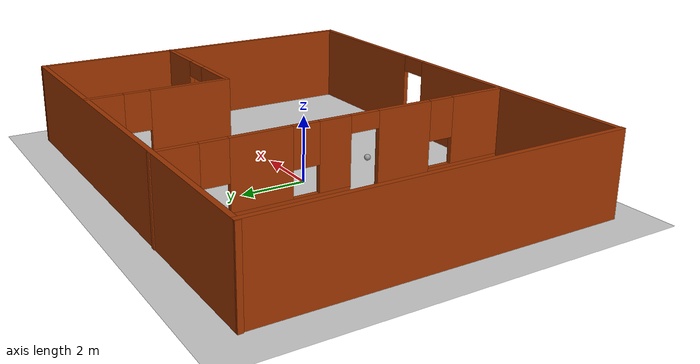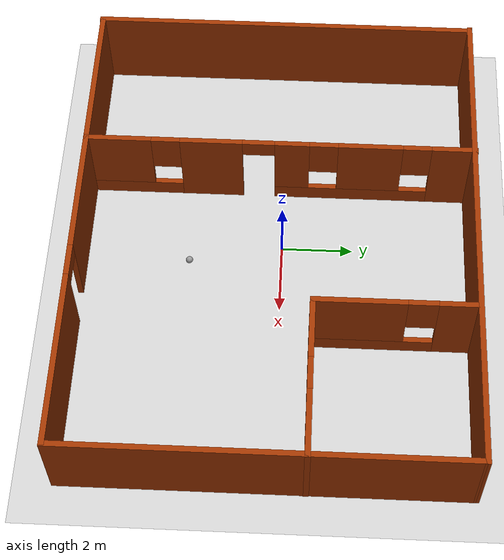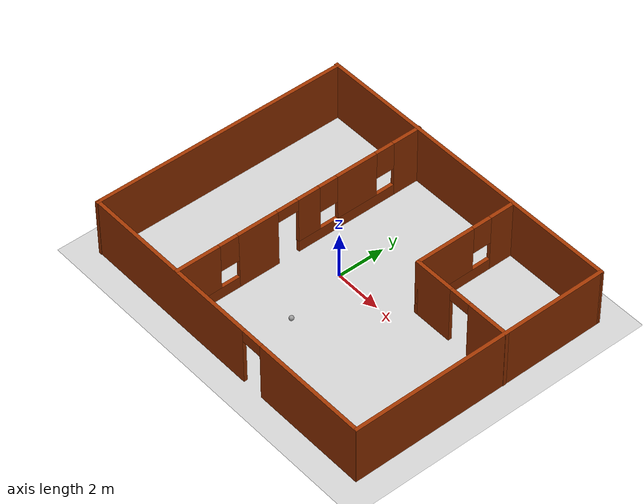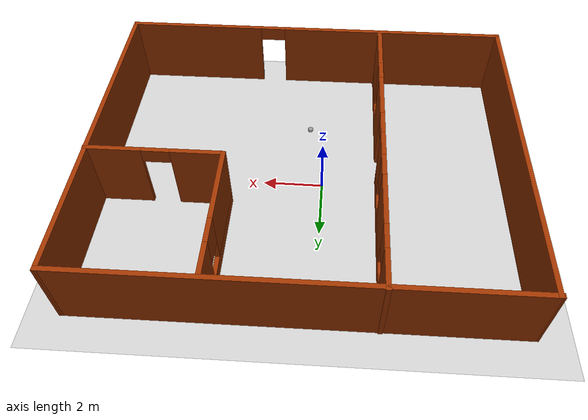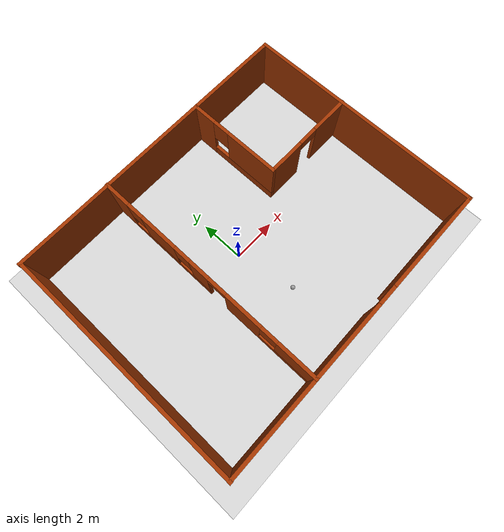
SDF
<sdf version="1.6">
 <world name="default">
  <light name="sun" type="directional">
   <pose>0 0 10 0 -0 0</pose>
   <diffuse>0.8 0.8 0.8 1</diffuse>
   <specular>0.1 0.1 0.1 1</specular>
   <attenuation>
    <range>1000</range>
    <constant>0.9</constant>
    <linear>0.01</linear>
    <quadratic>0.001</quadratic>
   </attenuation>
   <direction>-0.5 0.5 -1</direction>
  </light>
  <model name="ground_plane">
   <static>1</static>
   <link name="link">
    <collision name="collision">
     <geometry><plane><normal>0 0 1</normal><size>100 100</size></plane></geometry>
     <surface><friction><ode><mu>100</mu><mu2>50</mu2></ode></friction></surface>
    </collision>
    <visual name="visual">
     <cast_shadows>0</cast_shadows>
     <geometry><plane><normal>0 0 1</normal><size>100 100</size></plane></geometry>
     <material>
      <script><uri>file://media/materials/scripts/gazebo.material</uri><name>Gazebo/Grey</name></script>
     </material>
    </visual>
   </link>
  </model>
  <gravity>0 0 -9.8</gravity>
  <magnetic_field>6e-06 2.3e-05 -4.2e-05</magnetic_field>
  <atmosphere type="adiabatic"/>
  <physics name="default_physics" default="0" type="ode">
   <max_step_size>0.001</max_step_size>
   <real_time_factor>1</real_time_factor>
   <real_time_update_rate>1000</real_time_update_rate>
  </physics>
  <scene><ambient>0.4 0.4 0.4 1</ambient><background>0.7 0.7 0.7 1</background><shadows>1</shadows></scene>
  <spherical_coordinates>
   <surface_model>EARTH_WGS84</surface_model>
   <latitude_deg>0</latitude_deg>
   <longitude_deg>0</longitude_deg>
   <elevation>0</elevation>
   <heading_deg>0</heading_deg>
  </spherical_coordinates>
  <model name="ingrid_0">
   <pose>0.54796 -0.145633 0 0 -0 0</pose>
   <link name="Wall_0">
    <collision name="Wall_0_Collision">
     <geometry><box><size>11 0.15 2.5</size></box></geometry>
     <pose>0 0 1.25 0 -0 0</pose>
    </collision>
    <visual name="Wall_0_Visual">
     <pose>0 0 1.25 0 -0 0</pose>
     <geometry><box><size>11 0.15 2.5</size></box></geometry>
     <material>
      <script><uri>file://media/materials/scripts/gazebo.material</uri><name>Gazebo/Grey</name></script>
      <ambient>0.615686 0.203922 0 1</ambient>
     </material>
    </visual>
    <pose>-6.82034 -0.016189 0 0 -0 1.5708</pose>
   </link>
   <link name="Wall_1">
    <collision name="Wall_1_Collision">
     <geometry><box><size>13.8484 0.15 2.5</size></box></geometry>
     <pose>0 0 1.25 0 -0 0</pose>
    </collision>
    <visual name="Wall_1_Visual">
     <pose>0 0 1.25 0 -0 0</pose>
     <geometry><box><size>13.8484 0.15 2.5</size></box></geometry>
     <material>
      <script><uri>file://media/materials/scripts/gazebo.material</uri><name>Gazebo/Grey</name></script>
      <ambient>0.615686 0.203922 0 1</ambient>
     </material>
    </visual>
    <pose>-0.006322 5.41718 0 0 -0 0.001222</pose>
   </link>
   <link name="Wall_2">
    <collision name="Wall_2_Collision">
     <geometry><box><size>11 0.15 2.5</size></box></geometry>
     <pose>0 0 1.25 0 -0 0</pose>
    </collision>
    <visual name="Wall_2_Visual">
     <pose>0 0 1.25 0 -0 0</pose>
     <geometry><box><size>11 0.15 2.5</size></box></geometry>
     <material>
      <script><uri>file://media/materials/scripts/gazebo.material</uri><name>Gazebo/Grey</name></script>
      <ambient>0.615686 0.203922 0 1</ambient>
     </material>
    </visual>
    <pose>6.84287 0.00055 0 0 0 -1.5708</pose>
   </link>
   <link name="Wall_3">
    <pose>0.016272 -5.42445 0 0 -0 3.14159</pose>
    <visual name="Wall_3_Visual_0">
     <pose>-4.44831 0 1.25 0 -0 0</pose>
     <geometry><box><size>4.85337 0.15 2.5</size></box></geometry>
     <material>
      <script><uri>file://media/materials/scripts/gazebo.material</uri><name>Gazebo/Grey</name></script>
      <ambient>0.615686 0.203922 0 1</ambient>
     </material>
    </visual>
    <collision name="Wall_3_Collision_0">
     <geometry><box><size>4.85337 0.15 2.5</size></box></geometry>
     <pose>-4.44831 0 1.25 0 -0 0</pose>
    </collision>
    <visual name="Wall_3_Visual_1">
     <pose>2.87669 0 1.25 0 -0 0</pose>
     <geometry><box><size>7.99663 0.15 2.5</size></box></geometry>
     <material>
      <script><uri>file://media/materials/scripts/gazebo.material</uri><name>Gazebo/Grey</name></script>
      <ambient>0.615686 0.203922 0 1</ambient>
     </material>
    </visual>
    <collision name="Wall_3_Collision_1">
     <geometry><box><size>7.99663 0.15 2.5</size></box></geometry>
     <pose>2.87669 0 1.25 0 -0 0</pose>
    </collision>
    <visual name="Wall_3_Visual_2">
     <pose>-1.57163 0 2.25 0 -0 0</pose>
     <geometry><box><size>0.9 0.15 0.5</size></box></geometry>
     <material>
      <script><uri>file://media/materials/scripts/gazebo.material</uri><name>Gazebo/Grey</name></script>
      <ambient>0.615686 0.203922 0 1</ambient>
     </material>
    </visual>
    <collision name="Wall_3_Collision_2">
     <geometry><box><size>0.9 0.15 0.5</size></box></geometry>
     <pose>-1.57163 0 2.25 0 -0 0</pose>
    </collision>
   </link>
   <link name="Wall_5">
    <pose>-2.45001 0.016189 0 0 0 -1.5708</pose>
    <visual name="Wall_5_Visual_0">
     <pose>-4.85711 0 1.25 0 -0 0</pose>
     <geometry><box><size>1.28578 0.15 2.5</size></box></geometry>
     <material>
      <script><uri>file://media/materials/scripts/gazebo.material</uri><name>Gazebo/Grey</name></script>
      <ambient>0.615686 0.203922 0 1</ambient>
     </material>
    </visual>
    <collision name="Wall_5_Collision_0">
     <geometry><box><size>1.28578 0.15 2.5</size></box></geometry>
     <pose>-4.85711 0 1.25 0 -0 0</pose>
    </collision>
    <visual name="Wall_5_Visual_1">
     <pose>1.94492 0 1.25 0 -0 0</pose>
     <geometry><box><size>1.75323 0.15 2.5</size></box></geometry>
     <material>
      <script><uri>file://media/materials/scripts/gazebo.material</uri><name>Gazebo/Grey</name></script>
      <ambient>0.615686 0.203922 0 1</ambient>
     </material>
    </visual>
    <collision name="Wall_5_Collision_1">
     <geometry><box><size>1.75323 0.15 2.5</size></box></geometry>
     <pose>1.94492 0 1.25 0 -0 0</pose>
    </collision>
    <visual name="Wall_5_Visual_2">
     <pose>-2.02296 0 0.25 0 -0 0</pose>
     <geometry><box><size>4.38252 0.15 0.5</size></box></geometry>
     <material>
      <script><uri>file://media/materials/scripts/gazebo.material</uri><name>Gazebo/Grey</name></script>
      <ambient>0.615686 0.203922 0 1</ambient>
     </material>
    </visual>
    <collision name="Wall_5_Collision_2">
     <geometry><box><size>4.38252 0.15 0.5</size></box></geometry>
     <pose>-2.02296 0 0.25 0 -0 0</pose>
    </collision>
    <visual name="Wall_5_Visual_3">
     <pose>4.16076 0 0.25 0 -0 0</pose>
     <geometry><box><size>2.67847 0.15 0.5</size></box></geometry>
     <material>
      <script><uri>file://media/materials/scripts/gazebo.material</uri><name>Gazebo/Grey</name></script>
      <ambient>0.615686 0.203922 0 1</ambient>
     </material>
    </visual>
    <collision name="Wall_5_Collision_3">
     <geometry><box><size>2.67847 0.15 0.5</size></box></geometry>
     <pose>4.16076 0 0.25 0 -0 0</pose>
    </collision>
    <visual name="Wall_5_Visual_4">
     <pose>-2.51261 0 1.5 0 -0 0</pose>
     <geometry><box><size>1.80323 0.15 2</size></box></geometry>
     <material>
      <script><uri>file://media/materials/scripts/gazebo.material</uri><name>Gazebo/Grey</name></script>
      <ambient>0.615686 0.203922 0 1</ambient>
     </material>
    </visual>
    <collision name="Wall_5_Collision_4">
     <geometry><box><size>1.80323 0.15 2</size></box></geometry>
     <pose>-2.51261 0 1.5 0 -0 0</pose>
    </collision>
    <visual name="Wall_5_Visual_5">
     <pose>-0.321346 0 1.5 0 -0 0</pose>
     <geometry><box><size>0.979296 0.15 2</size></box></geometry>
     <material>
      <script><uri>file://media/materials/scripts/gazebo.material</uri><name>Gazebo/Grey</name></script>
      <ambient>0.615686 0.203922 0 1</ambient>
     </material>
    </visual>
    <collision name="Wall_5_Collision_5">
     <geometry><box><size>0.979296 0.15 2</size></box></geometry>
     <pose>-0.321346 0 1.5 0 -0 0</pose>
    </collision>
    <visual name="Wall_5_Visual_6">
     <pose>-0.321346 0 1.5 0 -0 0</pose>
     <geometry><box><size>0.979296 0.15 2</size></box></geometry>
     <material>
      <script><uri>file://media/materials/scripts/gazebo.material</uri><name>Gazebo/Grey</name></script>
      <ambient>0.615686 0.203922 0 1</ambient>
     </material>
    </visual>
    <collision name="Wall_5_Collision_6">
     <geometry><box><size>0.979296 0.15 2</size></box></geometry>
     <pose>-0.321346 0 1.5 0 -0 0</pose>
    </collision>
    <visual name="Wall_5_Visual_7">
     <pose>4.56076 0 1.5 0 -0 0</pose>
     <geometry><box><size>1.87847 0.15 2</size></box></geometry>
     <material>
      <script><uri>file://media/materials/scripts/gazebo.material</uri><name>Gazebo/Grey</name></script>
      <ambient>0.615686 0.203922 0 1</ambient>
     </material>
    </visual>
    <collision name="Wall_5_Collision_7">
     <geometry><box><size>1.87847 0.15 2</size></box></geometry>
     <pose>4.56076 0 1.5 0 -0 0</pose>
    </collision>
    <visual name="Wall_5_Visual_8">
     <pose>-3.81422 0 1.9 0 -0 0</pose>
     <geometry><box><size>0.8 0.15 1.2</size></box></geometry>
     <material>
      <script><uri>file://media/materials/scripts/gazebo.material</uri><name>Gazebo/Grey</name></script>
      <ambient>0.615686 0.203922 0 1</ambient>
     </material>
    </visual>
    <collision name="Wall_5_Collision_8">
     <geometry><box><size>0.8 0.15 1.2</size></box></geometry>
     <pose>-3.81422 0 1.9 0 -0 0</pose>
    </collision>
    <visual name="Wall_5_Visual_9">
     <pose>3.22153 0 1.9 0 -0 0</pose>
     <geometry><box><size>0.8 0.15 1.2</size></box></geometry>
     <material>
      <script><uri>file://media/materials/scripts/gazebo.material</uri><name>Gazebo/Grey</name></script>
      <ambient>0.615686 0.203922 0 1</ambient>
     </material>
    </visual>
    <collision name="Wall_5_Collision_9">
     <geometry><box><size>0.8 0.15 1.2</size></box></geometry>
     <pose>3.22153 0 1.9 0 -0 0</pose>
    </collision>
    <visual name="Wall_5_Visual_10">
     <pose>-1.21099 0 1.9 0 -0 0</pose>
     <geometry><box><size>0.8 0.15 1.2</size></box></geometry>
     <material>
      <script><uri>file://media/materials/scripts/gazebo.material</uri><name>Gazebo/Grey</name></script>
      <ambient>0.615686 0.203922 0 1</ambient>
     </material>
    </visual>
    <collision name="Wall_5_Collision_10">
     <geometry><box><size>0.8 0.15 1.2</size></box></geometry>
     <pose>-1.21099 0 1.9 0 -0 0</pose>
    </collision>
    <visual name="Wall_5_Visual_11">
     <pose>0.618302 0 2.25 0 -0 0</pose>
     <geometry><box><size>0.9 0.15 0.5</size></box></geometry>
     <material>
      <script><uri>file://media/materials/scripts/gazebo.material</uri><name>Gazebo/Grey</name></script>
      <ambient>0.615686 0.203922 0 1</ambient>
     </material>
    </visual>
    <collision name="Wall_5_Collision_11">
     <geometry><box><size>0.9 0.15 0.5</size></box></geometry>
     <pose>0.618302 0 2.25 0 -0 0</pose>
    </collision>
    <visual name="Wall_5_Visual_12">
     <pose>0.618302 0 2.25 0 -0 0</pose>
     <geometry><box><size>0.9 0.15 0.5</size></box></geometry>
     <material>
      <script><uri>file://media/materials/scripts/gazebo.material</uri><name>Gazebo/Grey</name></script>
      <ambient>0.615686 0.203922 0 1</ambient>
     </material>
    </visual>
    <collision name="Wall_5_Collision_12">
     <geometry><box><size>0.9 0.15 0.5</size></box></geometry>
     <pose>0.618302 0 2.25 0 -0 0</pose>
    </collision>
   </link>
   <link name="Wall_7">
    <pose>2.50561 3.2356 0 0 0 -1.5708</pose>
    <visual name="Wall_7_Visual_0">
     <pose>-1.67517 0 1.25 0 -0 0</pose>
     <geometry><box><size>1.14965 0.15 2.5</size></box></geometry>
     <material>
      <script><uri>file://media/materials/scripts/gazebo.material</uri><name>Gazebo/Grey</name></script>
      <ambient>0.615686 0.203922 0 1</ambient>
     </material>
    </visual>
    <collision name="Wall_7_Collision_0">
     <geometry><box><size>1.14965 0.15 2.5</size></box></geometry>
     <pose>-1.67517 0 1.25 0 -0 0</pose>
    </collision>
    <visual name="Wall_7_Visual_1">
     <pose>0.574826 0 0.25 0 -0 0</pose>
     <geometry><box><size>3.35035 0.15 0.5</size></box></geometry>
     <material>
      <script><uri>file://media/materials/scripts/gazebo.material</uri><name>Gazebo/Grey</name></script>
      <ambient>0.615686 0.203922 0 1</ambient>
     </material>
    </visual>
    <collision name="Wall_7_Collision_1">
     <geometry><box><size>3.35035 0.15 0.5</size></box></geometry>
     <pose>0.574826 0 0.25 0 -0 0</pose>
    </collision>
    <visual name="Wall_7_Visual_2">
     <pose>0.974826 0 1.5 0 -0 0</pose>
     <geometry><box><size>2.55035 0.15 2</size></box></geometry>
     <material>
      <script><uri>file://media/materials/scripts/gazebo.material</uri><name>Gazebo/Grey</name></script>
      <ambient>0.615686 0.203922 0 1</ambient>
     </material>
    </visual>
    <collision name="Wall_7_Collision_2">
     <geometry><box><size>2.55035 0.15 2</size></box></geometry>
     <pose>0.974826 0 1.5 0 -0 0</pose>
    </collision>
    <visual name="Wall_7_Visual_3">
     <pose>-0.700348 0 1.9 0 -0 0</pose>
     <geometry><box><size>0.8 0.15 1.2</size></box></geometry>
     <material>
      <script><uri>file://media/materials/scripts/gazebo.material</uri><name>Gazebo/Grey</name></script>
      <ambient>0.615686 0.203922 0 1</ambient>
     </material>
    </visual>
    <collision name="Wall_7_Collision_3">
     <geometry><box><size>0.8 0.15 1.2</size></box></geometry>
     <pose>-0.700348 0 1.9 0 -0 0</pose>
    </collision>
   </link>
   <link name="Wall_8">
    <pose>4.68061 1.0606 0 0 -0 0</pose>
    <visual name="Wall_8_Visual_0">
     <pose>-1.37354 0 1.25 0 -0 0</pose>
     <geometry><box><size>1.75292 0.15 2.5</size></box></geometry>
     <material>
      <script><uri>file://media/materials/scripts/gazebo.material</uri><name>Gazebo/Grey</name></script>
      <ambient>0.615686 0.203922 0 1</ambient>
     </material>
    </visual>
    <collision name="Wall_8_Collision_0">
     <geometry><box><size>1.75292 0.15 2.5</size></box></geometry>
     <pose>-1.37354 0 1.25 0 -0 0</pose>
    </collision>
    <visual name="Wall_8_Visual_1">
     <pose>1.32646 0 1.25 0 -0 0</pose>
     <geometry><box><size>1.84708 0.15 2.5</size></box></geometry>
     <material>
      <script><uri>file://media/materials/scripts/gazebo.material</uri><name>Gazebo/Grey</name></script>
      <ambient>0.615686 0.203922 0 1</ambient>
     </material>
    </visual>
    <collision name="Wall_8_Collision_1">
     <geometry><box><size>1.84708 0.15 2.5</size></box></geometry>
     <pose>1.32646 0 1.25 0 -0 0</pose>
    </collision>
    <visual name="Wall_8_Visual_2">
     <pose>-0.047081 0 2.25 0 -0 0</pose>
     <geometry><box><size>0.9 0.15 0.5</size></box></geometry>
     <material>
      <script><uri>file://media/materials/scripts/gazebo.material</uri><name>Gazebo/Grey</name></script>
      <ambient>0.615686 0.203922 0 1</ambient>
     </material>
    </visual>
    <collision name="Wall_8_Collision_2">
     <geometry><box><size>0.9 0.15 0.5</size></box></geometry>
     <pose>-0.047081 0 2.25 0 -0 0</pose>
    </collision>
   </link>
   <static>1</static>
  </model>
  <plugin name="collision_map_creator" filename="libcollision_map_creator.so"/>
  <model name="my_ball">
   <link name="link_0">
    <inertial>
     <mass>1</mass>
     <inertia><ixx>0.1</ixx><ixy>0</ixy><ixz>0</ixz><iyy>0.1</iyy><iyz>0</iyz><izz>0.1</izz></inertia>
    </inertial>
    <visual name="visual">
     <geometry><sphere><radius>0.1</radius></sphere></geometry>
     <material>
      <lighting>1</lighting>
      <script><uri>file://media/materials/scripts/gazebo.material</uri><name>Gazebo/Grey</name></script>
      <ambient>1 1 1 1</ambient>
      <diffuse>1 1 1 1</diffuse>
      <specular>1 1 1 1</specular>
      <emissive>1 1 1 1</emissive>
      <shader type="vertex"><normal_map>__default__</normal_map></shader>
     </material>
    </visual>
    <collision name="collision">
     <geometry><sphere><radius>0.1</radius></sphere></geometry>
     <surface>
      <friction>
       <ode><mu>1</mu><mu2>1</mu2><fdir1>0 0 0</fdir1><slip1>0</slip1><slip2>0</slip2></ode>
       <torsional>
        <coefficient>1</coefficient>
        <patch_radius>0</patch_radius>
        <surface_radius>0</surface_radius>
        <use_patch_radius>1</use_patch_radius>
        <ode><slip>0</slip></ode>
       </torsional>
      </friction>
      <bounce><restitution_coefficient>0</restitution_coefficient><threshold>1e+06</threshold></bounce>
      <contact>
       <collide_without_contact>0</collide_without_contact>
       <collide_without_contact_bitmask>1</collide_without_contact_bitmask>
       <collide_bitmask>1</collide_bitmask>
       <ode>
        <soft_cfm>0</soft_cfm>
        <soft_erp>0.2</soft_erp>
        <kp>1e+13</kp>
        <kd>1</kd>
        <max_vel>0.01</max_vel>
        <min_depth>0</min_depth>
       </ode>
       <bullet>
        <split_impulse>1</split_impulse>
        <split_impulse_penetration_threshold>-0.01</split_impulse_penetration_threshold>
        <soft_cfm>0</soft_cfm>
        <soft_erp>0.2</soft_erp>
        <kp>1e+13</kp>
        <kd>1</kd>
       </bullet>
      </contact>
     </surface>
    </collision>
   </link>
   <static>0</static>
   <pose>0.530687 -2.60916 0.1 0 -0 0</pose>
  </model>
 </world>
</sdf>
